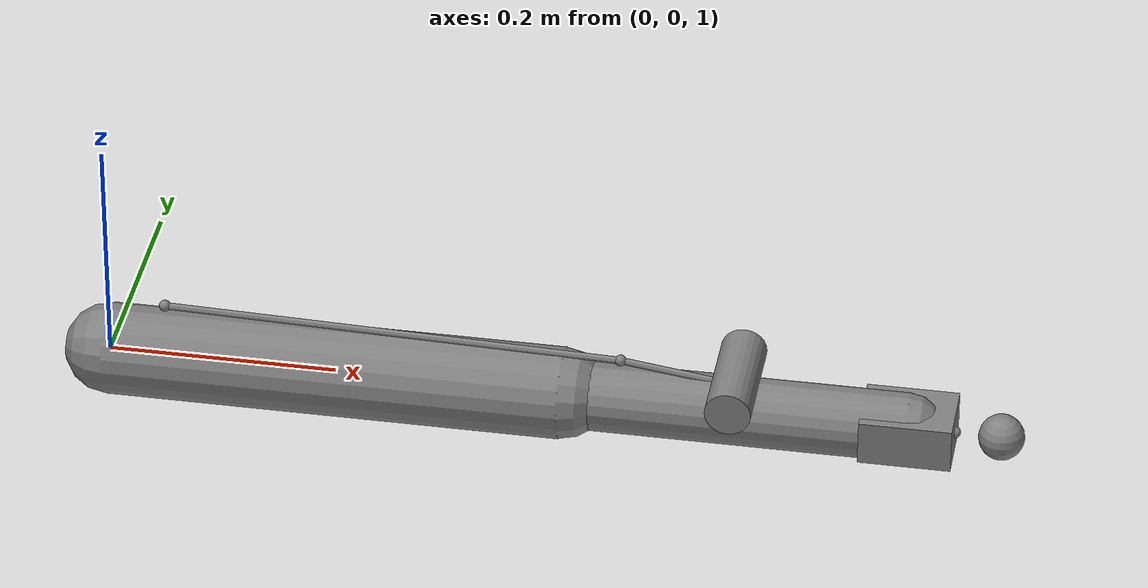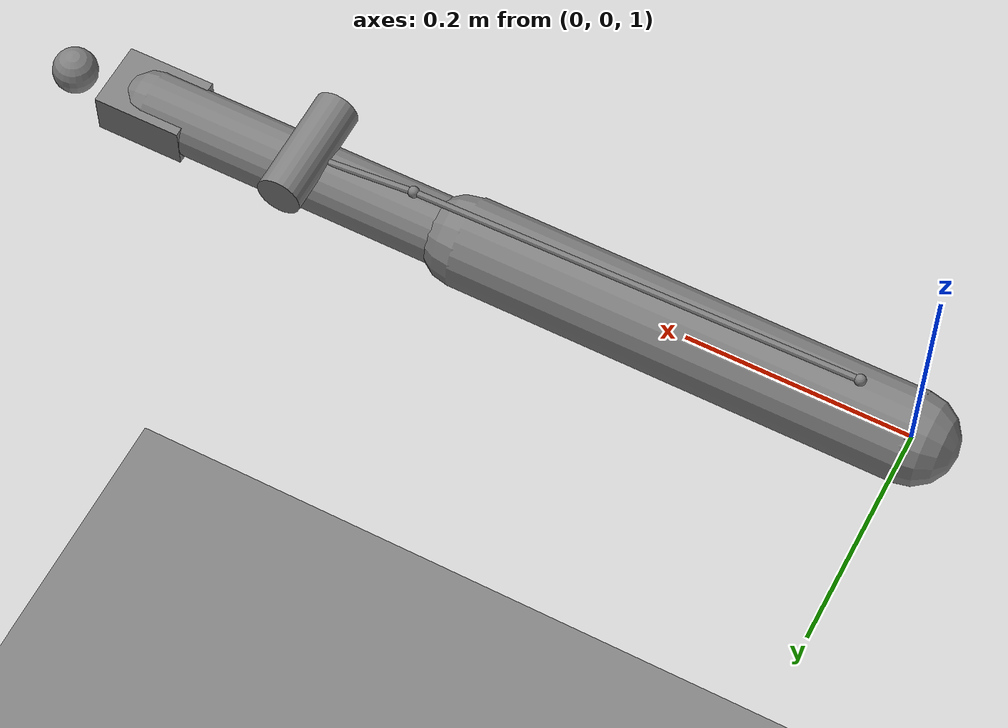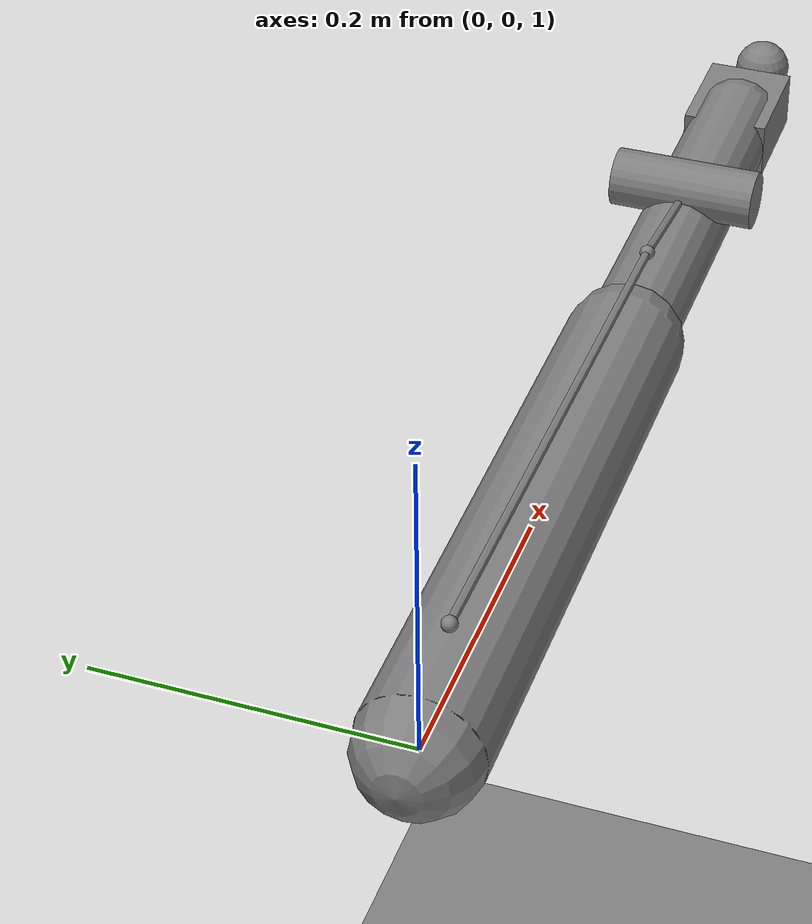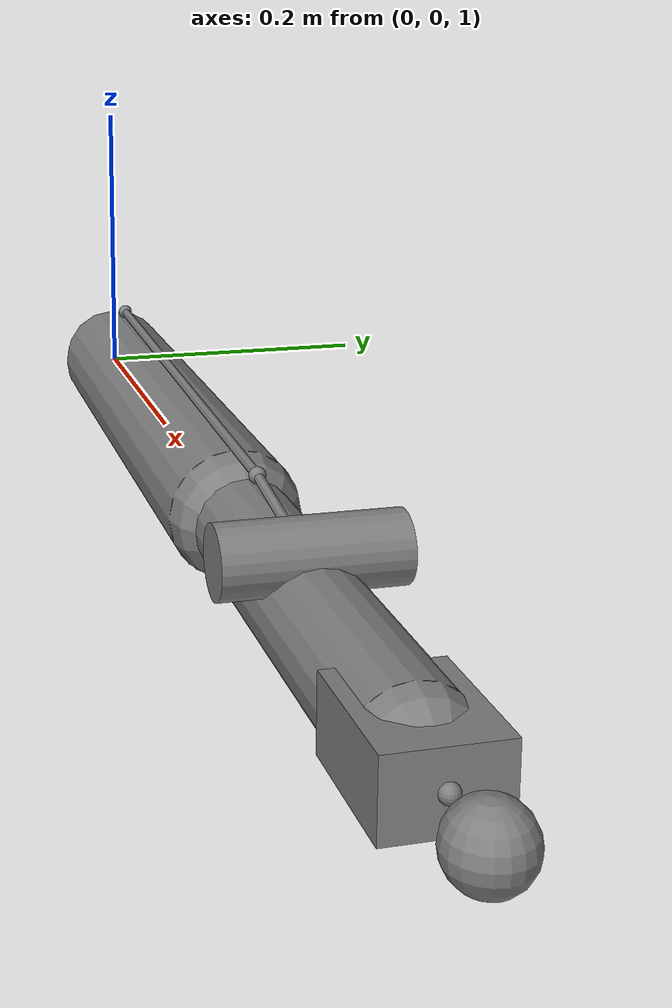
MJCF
<mujoco model="actuators_exotic">
  <compiler autolimits="true"/>
  <option timestep="0.001"/>
  <worldbody>
    <geom name="floor" type="plane" size="3 3 0.1"/>
    <body name="arm" pos="0 0 1">
      <joint name="shoulder" type="hinge" axis="0 1 0" range="-90 90"/>
      <geom name="arm_g" type="capsule" size="0.04" fromto="0 0 0 0.4 0 0"/>
      <site name="s_base" pos="0.05 0 0.05"/>
      <body name="fore" pos="0.4 0 0">
        <joint name="elbow" type="hinge" axis="0 1 0" range="-120 5"/>
        <geom name="fore_g" type="capsule" size="0.03" fromto="0 0 0 0.3 0 0"/>
        <site name="s_mid" pos="0.05 0 0.04"/>
        <geom name="wrap_g" type="cylinder" size="0.02 0.05" pos="0.15 0 0.03"
              euler="90 0 0" contype="0" conaffinity="0"/>
        <body name="hand" pos="0.3 0 0">
          <joint name="wrist" type="hinge" axis="0 1 0" range="-45 45"/>
          <geom name="hand_g" type="box" size="0.04 0.03 0.02"/>
          <site name="s_tip" pos="0.04 0 0"/>
          <body name="pad" pos="0.08 0 0">
            <joint name="pad_slide" type="slide" axis="1 0 0" range="-0.05 0.05"/>
            <geom name="pad_g" type="sphere" size="0.02"/>
          </body>
        </body>
      </body>
    </body>
  </worldbody>
  <tendon>
    <spatial name="ten_muscle" range="0 0.9">
      <site site="s_base"/>
      <geom geom="wrap_g" sidesite="s_mid"/>
      <site site="s_mid"/>
      <pulley divisor="2"/>
      <site site="s_mid"/>
      <site site="s_tip"/>
    </spatial>
  </tendon>
  <actuator>
    <intvelocity name="a_intvel" joint="shoulder" actrange="-1.5 1.5" kp="20" kv="2"/>
    <damper name="a_damper" joint="elbow" kv="5" ctrlrange="0 1"/>
    <cylinder name="a_cyl" joint="wrist" timeconst="0.5" area="0.02"/>
    <muscle name="a_muscle" tendon="ten_muscle" timeconst="0.01 0.04" range="0.6 1.2"
            force="120" scale="180" lmin="0.4" lmax="1.7" vmax="1.4" fpmax="1.2"
            fvmax="1.3"/>
    <adhesion name="a_adhesion" body="pad" ctrlrange="0 2" gain="30"/>
    <dcmotor name="a_dcmotor" joint="pad_slide" motorconst="0.05" resistance="1.2"
             nominal="12" inductance="0.002"/>
  </actuator>
</mujoco>
